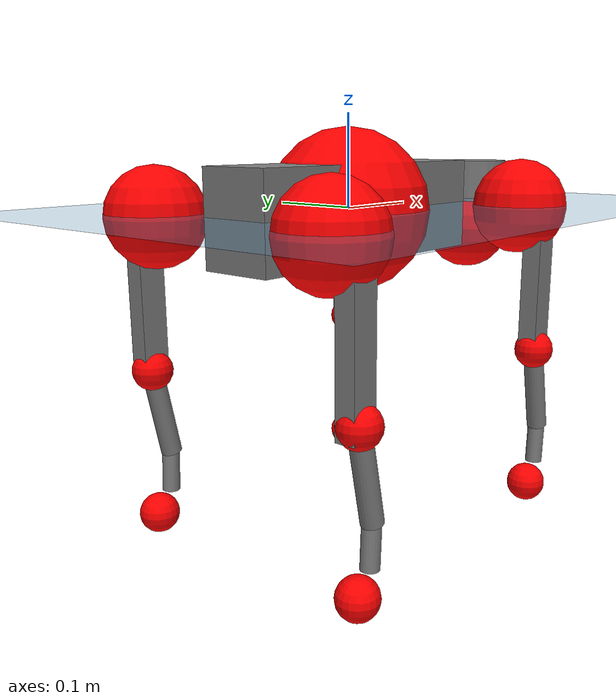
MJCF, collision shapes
<mujoco model="go2">
  <compiler angle="radian" assetdir="assets" balanceinertia="true" inertiafromgeom="false"/>

  <option timestep="0.005" density="1.2" viscosity="2e-05"/>

  <size nkey="1"/>

  <visual>
    <quality shadowsize="8192"/>
    <map shadowclip="0.5"/>
  </visual>

  <default>
    <default class="/">
      <geom contype="0" conaffinity="0" group="1" solref="-1000 -80"/>
      <site size="0.01 0.005 0.005" group="5"/>
      <general forcelimited="true" biastype="affine" gainprm="20" biasprm="0 -20 -0.5"/>
      <default class="go2">
        <joint armature="0.01" damping="0.01" frictionloss="0.2"/>
        <geom condim="1" margin="0.001"/>
        <default class="visual">
          <geom type="mesh" group="2"/>
        </default>
        <default class="collision">
          <geom group="3"/>
          <default class="foot">
            <geom size="0.022 0 0" condim="6" priority="1" friction="0.8 0.02 0.01" solimp="0.015 1 0.022"/>
          </default>
        </default>
        <default class="reward_collision_sphere">
          <geom group="5" rgba="1 0 0 1"/>
        </default>
      </default>
    </default>
  </default>

  <asset>
    <texture type="skybox" colorspace="auto" name="//unnamed_texture_0" builtin="gradient" rgb1="0.95 0.95 0.95" rgb2="0.95 0.95 0.95" width="100" height="600"/>
    <texture type="2d" colorspace="auto" name="texplane" builtin="checker" rgb1="0.345 0.575 0.748" rgb2="0.345 0.575 0.748" markrgb="1 1 1" width="512" height="512"/>
    <material name="MatPlane" class="/" texture="texplane" texuniform="true" texrepeat="2 2" specular="0.9"/>
    <material name="metal" class="/" rgba="0.9 0.95 0.95 1"/>
    <material name="black" class="/" rgba="0 0 0 1"/>
    <material name="white" class="/"/>
    <material name="gray" class="/" rgba="0.671705 0.692426 0.77427 1"/>
    <mesh name="base_0" class="/" file="base_0.obj"/>
    <mesh name="base_1" class="/" file="base_1.obj"/>
    <mesh name="base_2" class="/" file="base_2.obj"/>
    <mesh name="base_3" class="/" file="base_3.obj"/>
    <mesh name="base_4" class="/" file="base_4.obj"/>
    <mesh name="hip_0" class="/" file="hip_0.obj"/>
    <mesh name="hip_1" class="/" file="hip_1.obj"/>
    <mesh name="thigh_0" class="/" file="thigh_0.obj"/>
    <mesh name="thigh_1" class="/" file="thigh_1.obj"/>
    <mesh name="thigh_mirror_0" class="/" file="thigh_mirror_0.obj"/>
    <mesh name="thigh_mirror_1" class="/" file="thigh_mirror_1.obj"/>
    <mesh name="calf_0" class="/" file="calf_0.obj"/>
    <mesh name="calf_1" class="/" file="calf_1.obj"/>
    <mesh name="calf_mirror_0" class="/" file="calf_mirror_0.obj"/>
    <mesh name="calf_mirror_1" class="/" file="calf_mirror_1.obj"/>
    <mesh name="foot" class="/" file="foot.obj"/>
  </asset>

  <worldbody>
    <geom name="floor" class="/" size="100 100 0.125" type="plane" group="0" material="MatPlane"/>
    <light name="toplight_shadow" class="/" pos="0 0 5" dir="0.0990148 0.0990148 -0.990148" type="directional" ambient="0.04 0.04 0.04" diffuse="0.55 0.55 0.55" specular="0.12 0.12 0.12"/>
    <light name="toplight_fill" class="/" pos="0 0 5" dir="0.0990148 0.0990148 -0.990148" type="directional" castshadow="false" ambient="0.04 0.04 0.04" diffuse="0.3 0.3 0.3" specular="0.08 0.08 0.08"/>
    <body name="trunk" childclass="go2" pos="-8.16103e-05 0.000982709 -0.00278701" quat="1 1.22597e-05 0.000322778 -0.000286638">
      <inertial pos="0.0179761 0.0029086 -0.00405662" quat="-0.00129462 0.711726 -0.00167533 0.702454" mass="5.13525" diaginertia="0.0573824 0.108883 0.00802806"/>
      <joint name="//unnamed_joint_0" type="free" armature="0" damping="0" frictionloss="0"/>
      <geom name="//unnamed_geom_1" class="visual" material="black" mesh="base_0"/>
      <geom name="//unnamed_geom_2" class="visual" material="black" mesh="base_1"/>
      <geom name="//unnamed_geom_3" class="visual" material="black" mesh="base_2"/>
      <geom name="//unnamed_geom_4" class="visual" material="white" mesh="base_3"/>
      <geom name="//unnamed_geom_5" class="visual" material="gray" mesh="base_4"/>
      <geom name="trunk_1" class="collision" size="0.168218 0.0418086 0.0509751" type="box"/>
      <geom name="trunk_2" class="collision" size="0.044715 0.0402435" pos="0.250067 0 0.00790822" type="cylinder"/>
      <geom name="trunk_3" class="collision" size="0.0420321" pos="0.257086 0 -0.0474493"/>
      <geom name="//unnamed_geom_9" class="reward_collision_sphere" size="0.0894301"/>
      <geom name="//unnamed_geom_10" class="reward_collision_sphere" size="0.053658" pos="0.24568 0 -0.035587"/>
      <site name="imu" pos="-0.0179705 0.0141244 0.0391107" size="0.00894301"/>
      <camera name="track" pos="0 -2.0293 0" quat="0.707107 0.707107 0 0" mode="trackcom"/>
      <camera name="ego_camera" pos="0.273757 0 0.035587" quat="-0.5 -0.5 0.5 0.5"/>
      <body name="FL_hip" pos="0.167062 0.0464377 0.00318012" quat="0.999999 -0.00020116 -0.00108807 0.000664431">
        <inertial pos="-0.00332984 -0.000193951 -0.000136538" quat="0.500027 0.4979 0.504879 0.497158" mass="0.474021" diaginertia="0.000464747 0.000672093 0.000148903"/>
        <joint name="FL_hip_joint" pos="0 0 0" axis="0.999998 0.000831394 -0.00153126" range="-1.04396 1.06101" armature="0.00890465" damping="0.0231121" frictionloss="0.182932"/>
        <geom name="//unnamed_geom_11" class="visual" material="metal" mesh="hip_0"/>
        <geom name="//unnamed_geom_12" class="visual" material="gray" mesh="hip_1"/>
        <geom name="//unnamed_geom_13" class="collision" size="0.0411378 0.017886" pos="0 0.0811722 0" quat="0.707107 0.707107 0 0" type="cylinder"/>
        <geom name="//unnamed_geom_14" class="reward_collision_sphere" size="0.053658" pos="0 0.0710257 0"/>
        <body name="FL_thigh" pos="0.00178296 0.0968497 0.00287071" quat="1 0.000136578 -0.000606331 0.000459688">
          <inertial pos="-0.00118501 -0.0251614 -0.0268403" quat="0.829311 0.0840871 -0.0199102 0.552066" mass="0.809992" diaginertia="0.0031088 0.00602412 0.000262585"/>
          <joint name="FL_thigh_joint" pos="0 0 0" axis="-0.00534042 0.999981 -0.00307397" stiffness="0.00566015" range="-1.5124 3.50056" armature="0.00781268" damping="0.010717" frictionloss="0.157993"/>
          <geom name="//unnamed_geom_15" class="visual" material="metal" mesh="thigh_0"/>
          <geom name="//unnamed_geom_16" class="visual" material="gray" mesh="thigh_1"/>
          <geom name="//unnamed_geom_17" class="collision" size="0.095243 0.0109552 0.0152031" pos="0 0 -0.0842225" quat="0.707107 0 0.707107 0" type="box"/>
          <body name="FL_calf" pos="-0.000112346 -0.00106404 -0.17053" quat="0.999999 -0.000694958 0.00028595 0.00116239">
            <inertial pos="0.0036973 -0.00094626 -0.108815" quat="0.712199 -0.00463362 -0.0153309 0.701795" mass="0.172282" diaginertia="0.000744942 0.00161988 1.67635e-05"/>
            <joint name="FL_calf_joint" pos="0 0 0" axis="0.00589765 0.999731 0.0224143" stiffness="0.0128218" range="-2.74163 -0.855082" armature="0.0100755" damping="0" frictionloss="0.204306"/>
            <geom name="//unnamed_geom_18" class="visual" material="gray" mesh="calf_0"/>
            <geom name="//unnamed_geom_19" class="visual" material="black" mesh="calf_1"/>
            <geom name="FL_calf0" class="collision" size="0.0107316 0.053658" pos="0.00701942 0 -0.0474493" quat="0.994493 0 -0.104807 0" type="cylinder"/>
            <geom name="//unnamed_geom_21" class="collision" size="0.00983731 0.0290648" pos="0.0175486 0 -0.117042" quat="0.999688 0 0.0249974 0" type="cylinder"/>
            <geom name="//unnamed_geom_22" class="visual" pos="0 0 -0.168445" quat="1 0 0 0" material="black" mesh="foot"/>
            <geom name="FL_foot" class="foot" size="0.0163879" pos="-0.00175486 0 -0.168445"/>
            <geom name="//unnamed_geom_24" class="reward_collision_sphere" size="0.0223575"/>
            <geom name="//unnamed_geom_25" class="reward_collision_sphere" size="0.0223575" pos="-0.00175486 0 -0.168445"/>
            <site name="FL_foot" class="foot" pos="-0.00175486 0 -0.168445" size="0.00894301"/>
          </body>
        </body>
      </body>
      <body name="FR_hip" pos="0.170444 -0.0455904 3.05986e-05" quat="1 0.000409044 0.000210228 0.000802731">
        <inertial pos="-0.00171992 -0.00330138 -0.000476138" quat="0.493692 0.501284 0.503092 0.501878" mass="0.483887" diaginertia="0.000431083 0.000619545 0.000138476"/>
        <joint name="FR_hip_joint" pos="0 0 0" axis="0.999883 -0.0130963 -0.00789161" range="-1.00511 1.04684" armature="0.00969731" damping="0.00698151" frictionloss="0.16422"/>
        <geom name="//unnamed_geom_26" class="visual" pos="0 1.94992e-09 8.36361e-08" quat="4.63268e-05 1 0 0" material="metal" mesh="hip_0"/>
        <geom name="//unnamed_geom_27" class="visual" pos="0 3.16105e-09 -2.06864e-07" quat="4.63268e-05 1 0 0" material="gray" mesh="hip_1"/>
        <geom name="//unnamed_geom_28" class="collision" size="0.0411378 0.017886" pos="0 -0.0811722 0" quat="0.707107 0.707107 0 0" type="cylinder"/>
        <geom name="//unnamed_geom_29" class="reward_collision_sphere" size="0.053658" pos="0 -0.0710257 0"/>
        <body name="FR_thigh" pos="0.000886218 -0.0968757 0.00359497" quat="1 -1.64663e-05 -0.000465081 -0.000442698">
          <inertial pos="-0.000231178 0.0205267 -0.0249941" quat="0.55535 -0.0106678 0.0763757 0.828033" mass="0.822139" diaginertia="0.00301616 0.00590066 0.000268081"/>
          <joint name="FR_thigh_joint" pos="0 0 0" axis="-0.00165214 -0.999995 -0.00259272" range="-3.48703 1.60777" armature="0.00901636" damping="0.00348407" frictionloss="0.203493"/>
          <geom name="//unnamed_geom_30" class="visual" material="metal" mesh="thigh_mirror_0"/>
          <geom name="//unnamed_geom_31" class="visual" material="gray" mesh="thigh_mirror_1"/>
          <geom name="//unnamed_geom_32" class="collision" size="0.095243 0.0109552 0.0152031" pos="0 0 -0.0842225" quat="0.707107 0 0.707107 0" type="box"/>
          <body name="FR_calf" pos="-8.38486e-05 -0.00210554 -0.170565" quat="1 7.67932e-05 -8.23909e-05 -5.12229e-05">
            <inertial pos="0.00510328 -0.000190461 -0.112352" quat="0.702018 -0.00472892 0.00736397 0.712105" mass="0.174154" diaginertia="0.000773498 0.00157182 1.58912e-05"/>
            <joint name="FR_calf_joint" pos="0 0 0" axis="-0.00429821 -0.99999 -0.000864954" range="0.817537 2.76958" armature="0.0079782" damping="0.0201608" frictionloss="0.155689"/>
            <geom name="//unnamed_geom_33" class="visual" material="gray" mesh="calf_mirror_0"/>
            <geom name="//unnamed_geom_34" class="visual" material="black" mesh="calf_mirror_1"/>
            <geom name="FR_calf0" class="collision" size="0.0116259 0.053658" pos="0.00877428 0 -0.0474493" quat="0.995004 0 -0.0998334 0" type="cylinder"/>
            <geom name="//unnamed_geom_36" class="collision" size="0.00983731 0.0290648" pos="0.0175486 0 -0.117042" quat="0.999688 0 0.0249974 0" type="cylinder"/>
            <geom name="//unnamed_geom_37" class="visual" pos="0 0 -0.168445" quat="1 0 0 0" material="black" mesh="foot"/>
            <geom name="FR_foot" class="foot" size="0.0196803" pos="-0.00175486 0 -0.168445"/>
            <geom name="//unnamed_geom_39" class="reward_collision_sphere" size="0.0223575"/>
            <geom name="//unnamed_geom_40" class="reward_collision_sphere" size="0.0223575" pos="-0.00175486 0 -0.168445"/>
            <site name="FR_foot" class="foot" pos="-0.00175486 0 -0.168445" size="0.00894301"/>
          </body>
        </body>
      </body>
      <body name="RL_hip" pos="-0.167971 0.0457775 -0.00240278" quat="1 -0.000256606 0.000346019 -0.000440267">
        <inertial pos="0.00696726 0.00265586 -0.00227742" quat="0.505879 0.498031 0.495772 0.500261" mass="0.494839" diaginertia="0.000460259 0.000654138 0.000152185"/>
        <joint name="RL_hip_joint" pos="0 0 0" axis="-0.999818 -0.010451 -0.0159504" stiffness="0.0110112" range="-1.04202 0.989756" armature="0.00820125" damping="0" frictionloss="0.190202"/>
        <geom name="//unnamed_geom_41" class="visual" pos="-7.54475e-10 0 -1.47894e-07" quat="4.63268e-05 0 1 0" material="metal" mesh="hip_0"/>
        <geom name="//unnamed_geom_42" class="visual" pos="-1.22309e-09 0 -1.31161e-07" quat="4.63268e-05 0 1 0" material="gray" mesh="hip_1"/>
        <geom name="//unnamed_geom_43" class="collision" size="0.0411378 0.017886" pos="0 0.0811722 0" quat="0.707107 0.707107 0 0" type="cylinder"/>
        <geom name="//unnamed_geom_44" class="reward_collision_sphere" size="0.053658" pos="0 0.0710257 0"/>
        <body name="RL_thigh" pos="0.00048292 0.0950873 0.00079882" quat="1 0.000144498 -2.21814e-05 2.20056e-05">
          <inertial pos="-0.00353764 -0.0230697 -0.0254029" quat="0.835162 0.0892302 -0.0193181 0.542374" mass="0.846048" diaginertia="0.00311877 0.00643295 0.000286535"/>
          <joint name="RL_thigh_joint" pos="0 0 0" axis="-0.0142729 0.999896 0.00224691" stiffness="0.00836055" range="-0.540697 4.52909" armature="0.00986978" damping="0" frictionloss="0.178089"/>
          <geom name="//unnamed_geom_45" class="visual" material="metal" mesh="thigh_0"/>
          <geom name="//unnamed_geom_46" class="visual" material="gray" mesh="thigh_1"/>
          <geom name="//unnamed_geom_47" class="collision" size="0.095243 0.0109552 0.0152031" pos="0 0 -0.0842225" quat="0.707107 0 0.707107 0" type="box"/>
          <body name="RL_calf" pos="0.000242369 -0.00167733 -0.169182" quat="1 -0.000288414 -0.000405213 -0.000325245">
            <inertial pos="0.00313053 -0.000329091 -0.112778" quat="0.712093 -0.00429863 -0.0171997 0.701862" mass="0.177586" diaginertia="0.000768154 0.00159655 1.6866e-05"/>
            <joint name="RL_calf_joint" pos="0 0 0" axis="-0.0130833 0.999893 -0.00658737" stiffness="0.00364038" range="-2.72146 -0.7818" armature="0.0100867" damping="0" frictionloss="0.182473"/>
            <geom name="//unnamed_geom_48" class="visual" material="gray" mesh="calf_0"/>
            <geom name="//unnamed_geom_49" class="visual" material="black" mesh="calf_1"/>
            <geom name="RL_calf0" class="collision" size="0.0116259 0.053658" pos="0.00877428 0 -0.0474493" quat="0.995004 0 -0.0998334 0" type="cylinder"/>
            <geom name="//unnamed_geom_51" class="collision" size="0.00983731 0.0290648" pos="0.0175486 0 -0.117042" quat="0.999688 0 0.0249974 0" type="cylinder"/>
            <geom name="//unnamed_geom_52" class="visual" pos="0 0 -0.168445" quat="1 0 0 0" material="black" mesh="foot"/>
            <geom name="RL_foot" class="foot" size="0.0163087" pos="-0.00175486 0 -0.168445"/>
            <geom name="//unnamed_geom_54" class="reward_collision_sphere" size="0.0223575"/>
            <geom name="//unnamed_geom_55" class="reward_collision_sphere" size="0.0223575" pos="-0.00175486 0 -0.168445"/>
            <site name="RL_foot" class="foot" pos="-0.00175486 0 -0.168445" size="0.00894301"/>
          </body>
        </body>
      </body>
      <body name="RR_hip" pos="-0.16713 -0.0505493 -0.0040361" quat="1 1.27291e-05 5.14792e-05 4.24723e-05">
        <inertial pos="0.00512936 0.000478899 -0.000750164" quat="0.498782 0.50113 0.488221 0.511591" mass="0.485834" diaginertia="0.000464865 0.0006517 0.000150882"/>
        <joint name="RR_hip_joint" pos="0 0 0" axis="-1 -0.000669028 0.000648165" stiffness="0.00937858" range="-0.996119 1.05167" armature="0.00760058" damping="0" frictionloss="0.183533"/>
        <geom name="//unnamed_geom_56" class="visual" pos="7.59225e-10 1.94992e-09 -2.3153e-07" quat="2.14617e-09 4.63268e-05 4.63268e-05 -1" material="metal" mesh="hip_0"/>
        <geom name="//unnamed_geom_57" class="visual" pos="1.21134e-09 3.16105e-09 7.57028e-08" quat="2.14617e-09 4.63268e-05 4.63268e-05 -1" material="gray" mesh="hip_1"/>
        <geom name="//unnamed_geom_58" class="collision" size="0.0411378 0.017886" pos="0 -0.0811722 0" quat="0.707107 0.707107 0 0" type="cylinder"/>
        <geom name="//unnamed_geom_59" class="reward_collision_sphere" size="0.053658" pos="0 -0.0710257 0"/>
        <body name="RR_thigh" pos="-0.000588824 -0.0985935 0.000533833" quat="1 1.98477e-05 2.33884e-05 9.23853e-05">
          <inertial pos="-0.00300366 0.0230092 -0.0258637" quat="0.551854 -0.0200786 0.0849413 0.829361" mass="0.80839" diaginertia="0.00308754 0.00649613 0.000273843"/>
          <joint name="RR_thigh_joint" pos="0 0 0" axis="0.00388979 -0.999991 -0.00186972" stiffness="0.011104" range="-4.53579 0.554353" armature="0.00928135" damping="0.0175061" frictionloss="0.184267"/>
          <geom name="//unnamed_geom_60" class="visual" material="metal" mesh="thigh_mirror_0"/>
          <geom name="//unnamed_geom_61" class="visual" material="gray" mesh="thigh_mirror_1"/>
          <geom name="//unnamed_geom_62" class="collision" size="0.095243 0.0109552 0.0152031" pos="0 0 -0.0842225" quat="0.707107 0 0.707107 0" type="box"/>
          <body name="RR_calf" pos="0.00257751 -0.00240813 -0.166182" quat="1 0.000257555 -0.000591557 -6.05349e-05">
            <inertial pos="0.00298876 0.000411406 -0.111819" quat="0.705669 -0.00604191 -0.0121518 0.708411" mass="0.173821" diaginertia="0.000794703 0.00155231 1.67321e-05"/>
            <joint name="RR_calf_joint" pos="0 0 0" axis="-0.00874754 -0.99996 0.0017284" range="0.798975 2.71808" armature="0.00816363" damping="0.0160424" frictionloss="0.163773"/>
            <geom name="//unnamed_geom_63" class="visual" material="gray" mesh="calf_mirror_0"/>
            <geom name="//unnamed_geom_64" class="visual" material="black" mesh="calf_mirror_1"/>
            <geom name="RR_calf0" class="collision" size="0.0116259 0.053658" pos="0.00877428 0 -0.0474493" quat="0.995004 0 -0.0998334 0" type="cylinder"/>
            <geom name="//unnamed_geom_66" class="collision" size="0.00983731 0.0290648" pos="0.0175486 0 -0.117042" quat="0.999688 0 0.0249974 0" type="cylinder"/>
            <geom name="//unnamed_geom_67" class="visual" pos="0 0 -0.168445" quat="1 0 0 0" material="black" mesh="foot"/>
            <geom name="RR_foot" class="foot" size="0.0188778" pos="-0.00175486 0 -0.168445"/>
            <geom name="//unnamed_geom_69" class="reward_collision_sphere" size="0.0223575"/>
            <geom name="//unnamed_geom_70" class="reward_collision_sphere" size="0.0223575" pos="-0.00175486 0 -0.168445"/>
            <site name="RR_foot" class="foot" pos="-0.00175486 0 -0.168445" size="0.00894301"/>
          </body>
        </body>
      </body>
    </body>
  </worldbody>

  <contact>
    <pair class="/" geom1="floor" geom2="FL_foot" name="//unnamed_contact_0"/>
    <pair class="/" geom1="floor" geom2="FR_foot" name="//unnamed_contact_1"/>
    <pair class="/" geom1="floor" geom2="RL_foot" name="//unnamed_contact_2"/>
    <pair class="/" geom1="floor" geom2="RR_foot" name="//unnamed_contact_3"/>
  </contact>

  <actuator>
    <general name="FL_hip" class="/" joint="FL_hip_joint" forcerange="-21.2565 21.2565" gainprm="19.207" biasprm="0 -19.207 -0.422245"/>
    <general name="FL_thigh" class="/" joint="FL_thigh_joint" forcerange="-19.0158 19.0158" gainprm="19.207" biasprm="0 -19.207 -0.422245"/>
    <general name="FL_calf" class="/" joint="FL_calf_joint" forcerange="-40.6942 40.6942" gainprm="19.207" biasprm="0 -19.207 -0.422245"/>
    <general name="FR_hip" class="/" joint="FR_hip_joint" forcerange="-21.798 21.798" gainprm="19.207" biasprm="0 -19.207 -0.422245"/>
    <general name="FR_thigh" class="/" joint="FR_thigh_joint" forcerange="-23.3666 23.3666" gainprm="19.207" biasprm="0 -19.207 -0.422245"/>
    <general name="FR_calf" class="/" joint="FR_calf_joint" forcerange="-41.2259 41.2259" gainprm="19.207" biasprm="0 -19.207 -0.422245"/>
    <general name="RL_hip" class="/" joint="RL_hip_joint" forcerange="-21.5591 21.5591" gainprm="19.207" biasprm="0 -19.207 -0.422245"/>
    <general name="RL_thigh" class="/" joint="RL_thigh_joint" forcerange="-19.0493 19.0493" gainprm="19.207" biasprm="0 -19.207 -0.422245"/>
    <general name="RL_calf" class="/" joint="RL_calf_joint" forcerange="-39.4957 39.4957" gainprm="19.207" biasprm="0 -19.207 -0.422245"/>
    <general name="RR_hip" class="/" joint="RR_hip_joint" forcerange="-19.1964 19.1964" gainprm="19.207" biasprm="0 -19.207 -0.422245"/>
    <general name="RR_thigh" class="/" joint="RR_thigh_joint" forcerange="-21.8843 21.8843" gainprm="19.207" biasprm="0 -19.207 -0.422245"/>
    <general name="RR_calf" class="/" joint="RR_calf_joint" forcerange="-41.6531 41.6531" gainprm="19.207" biasprm="0 -19.207 -0.422245"/>
  </actuator>

  <sensor>
    <gyro site="imu" name="imu_angular_velocity"/>
    <velocimeter site="imu" name="imu_linear_velocity"/>
    <framelinvel objtype="site" objname="FL_foot" name="FL_foot_global_linear_velocity"/>
    <framelinvel objtype="site" objname="FR_foot" name="FR_foot_global_linear_velocity"/>
    <framelinvel objtype="site" objname="RL_foot" name="RL_foot_global_linear_velocity"/>
    <framelinvel objtype="site" objname="RR_foot" name="RR_foot_global_linear_velocity"/>
  </sensor>

  <keyframe>
    <key name="home" qpos="0 0 0.325 1 0 0 0 0.1 0.8 -1.5 -0.1 -0.8 1.5 -0.1 0.8 -1.5 0.1 -0.8 1.5"/>
  </keyframe>
</mujoco>
